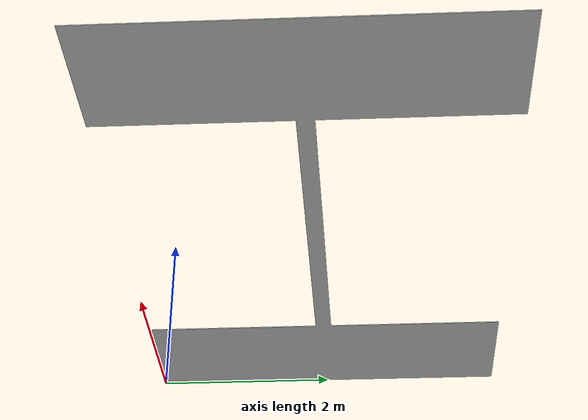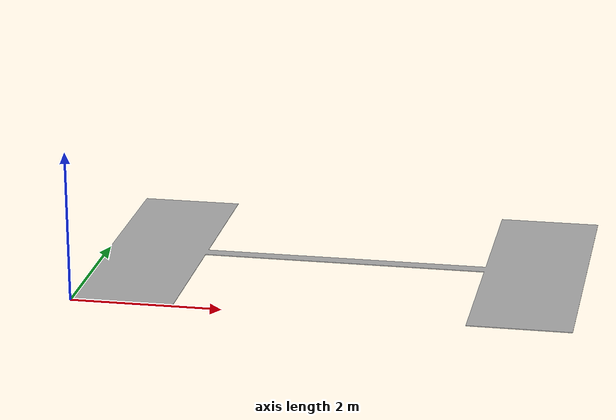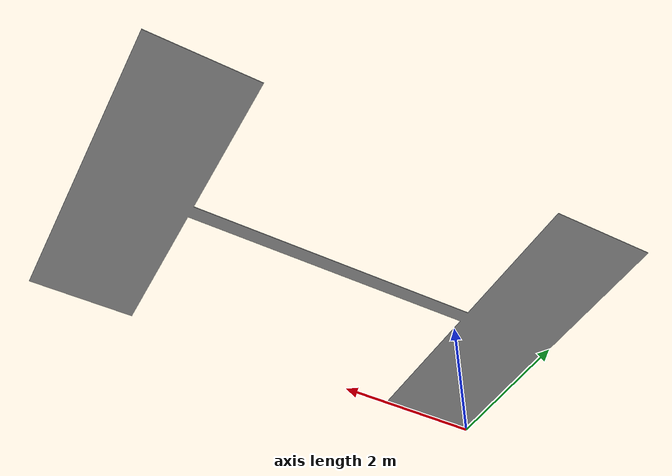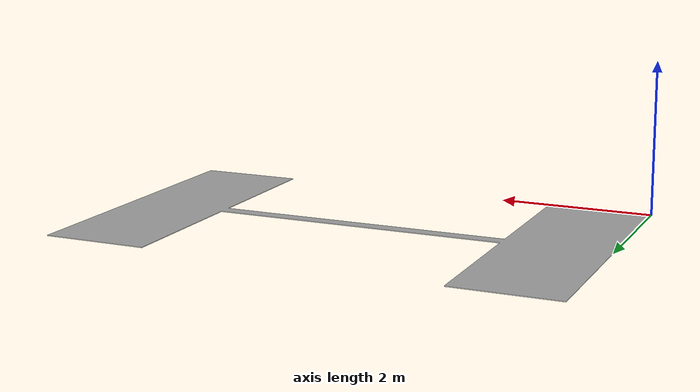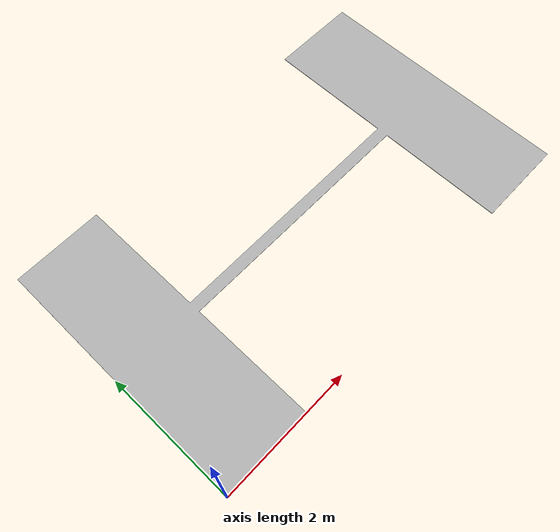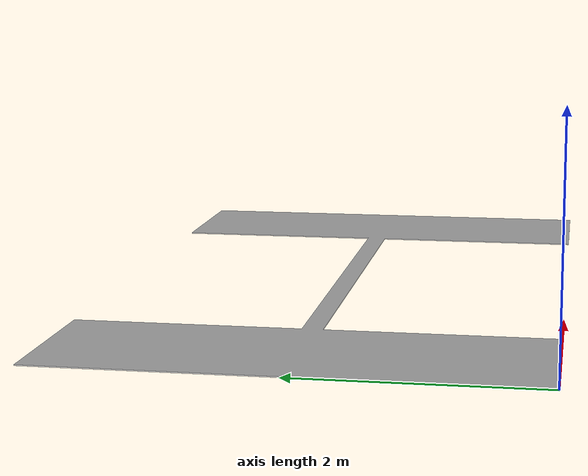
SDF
<?xml version="1.0"?>
<sdf version="1.6">
    <model name="thin_beam_uniform">
      <static>true</static>
      <link name="body">
        <visual name="visual">
          <geometry>
            <mesh>
                <uri>meshes/thin_beam_uniform.stl</uri>
            </mesh>
          </geometry>
        </visual>
        <collision name="collision">
          <geometry>
            <mesh>
                <uri>meshes/thin_beam_uniform.stl</uri>
            </mesh>
          </geometry>
          <surface>
            <friction>
              <ode>
                <mu>100</mu>
                <mu2>100</mu2>
              </ode>
            </friction>
          </surface>
        </collision>
      </link>
    </model>
</sdf>
